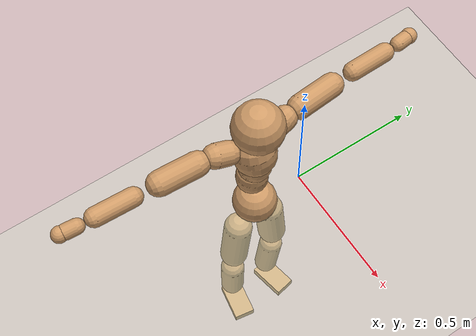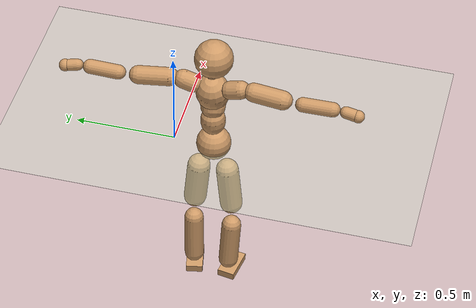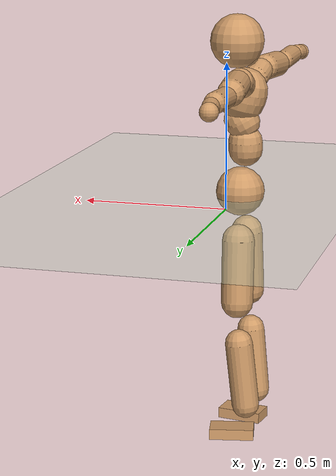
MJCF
<mujoco model="humanoid">
  <compiler coordinate="local"/>
  <default>
    <joint damping="0.0" armature="0.01" stiffness="0.0" limited="true"/>
    <geom conaffinity="1" condim="3" contype="7" margin="0.001" rgba="0.8 0.6 .4 1"/>
  </default>
  <asset>
    <texture type="skybox" builtin="gradient" rgb1=".4 .5 .6" rgb2="0 0 0" width="100" height="100"/>
    <texture builtin="flat" height="1278" mark="cross" markrgb="1 1 1" name="texgeom" random="0.01" rgb1="0.8 0.6 0.4" rgb2="0.8 0.6 0.4" type="cube" width="127"/>
    <texture builtin="checker" height="100" name="texplane" rgb1="0 0 0" rgb2="0.8 0.8 0.8" type="2d" width="100"/>
    <material name="MatPlane" reflectance="0.5" shininess="1" specular="1" texrepeat="60 60" texture="texplane"/>
    <material name="geom" texture="texgeom" texuniform="true"/>
  </asset>
  <worldbody>
    <light cutoff="100" diffuse="1 1 1" dir="-0 0 -1.3" directional="true" exponent="1" pos="0 0 1.3" specular=".1 .1 .1"/>
    <geom conaffinity="1" condim="3" name="floor" pos="0 0 0" rgba="0.8 0.9 0.8 1" size="100 100 .2" type="plane" material="MatPlane"/>
    <body name="Pelvis" pos="-0.0023 -0.2001 0.0206">
      <freejoint name="Pelvis"/>
      <geom type="sphere" contype="1" conaffinity="1" density="500" size="0.0859" pos="0.0000 0.0000 0.0000" name="Pelvis"/>
      <body name="L_Hip" pos="-0.0108 0.0656 -0.0873">
        <joint name="L_Hip_x" type="hinge" pos="0 0 0" axis="1 0 0" stiffness="800" damping="80" armature="0.02" range="-180.0000 180.0000"/>
        <joint name="L_Hip_y" type="hinge" pos="0 0 0" axis="0 1 0" stiffness="800" damping="80" armature="0.02" range="-180.0000 180.0000"/>
        <joint name="L_Hip_z" type="hinge" pos="0 0 0" axis="0 0 1" stiffness="800" damping="80" armature="0.02" range="-180.0000 180.0000"/>
        <geom type="capsule" contype="1" conaffinity="1" density="500" fromto="-0.0006 0.0066 -0.0735 -0.0025 0.0265 -0.2941" size="0.0567" name="L_Hip"/>
        <body name="L_Knee" pos="-0.0032 0.0332 -0.3676">
          <joint name="L_Knee_x" type="hinge" pos="0 0 0" axis="1 0 0" stiffness="800" damping="80" armature="0.02" range="-180.0000 180.0000"/>
          <joint name="L_Knee_y" type="hinge" pos="0 0 0" axis="0 1 0" stiffness="800" damping="80" armature="0.02" range="-180.0000 180.0000"/>
          <joint name="L_Knee_z" type="hinge" pos="0 0 0" axis="0 0 1" stiffness="800" damping="80" armature="0.02" range="-180.0000 180.0000"/>
          <geom type="capsule" contype="1" conaffinity="1" density="500" fromto="-0.0081 -0.0023 -0.0769 -0.0324 -0.0090 -0.3077" size="0.0489" name="L_Knee"/>
          <body name="L_Ankle" pos="-0.0405 -0.0113 -0.3847">
            <joint name="L_Ankle_x" type="hinge" pos="0 0 0" axis="1 0 0" stiffness="800" damping="80" armature="0.02" range="-180.0000 180.0000"/>
            <joint name="L_Ankle_y" type="hinge" pos="0 0 0" axis="0 1 0" stiffness="800" damping="80" armature="0.02" range="-180.0000 180.0000"/>
            <joint name="L_Ankle_z" type="hinge" pos="0 0 0" axis="0 0 1" stiffness="800" damping="80" armature="0.02" range="-180.0000 180.0000"/>
            <geom type="box" contype="1" conaffinity="1" density="500" pos="0.0555 0.0108 -0.0269" size="0.0786 0.0425 0.0194" quat="0.9954 0.0000 0.0000 0.0961" name="L_Ankle"/>
            <body name="L_Toe" pos="0.1109 0.0216 -0.0537">
              <joint name="L_Toe_x" type="hinge" pos="0 0 0" axis="1 0 0" stiffness="500" damping="50" armature="0.02" range="-180.0000 180.0000"/>
              <joint name="L_Toe_y" type="hinge" pos="0 0 0" axis="0 1 0" stiffness="500" damping="50" armature="0.02" range="-180.0000 180.0000"/>
              <joint name="L_Toe_z" type="hinge" pos="0 0 0" axis="0 0 1" stiffness="500" damping="50" armature="0.02" range="-180.0000 180.0000"/>
              <geom type="box" contype="1" conaffinity="1" density="500" pos="0.0000 0.0000 0.0264" size="0.0009 0.0022 0.0009" quat="0.9947 0.0000 0.0000 0.1029" name="L_Toe"/>
            </body>
          </body>
        </body>
      </body>
      <body name="R_Hip" pos="-0.0071 -0.0638 -0.0867">
        <joint name="R_Hip_x" type="hinge" pos="0 0 0" axis="1 0 0" stiffness="800" damping="80" armature="0.02" range="-180.0000 180.0000"/>
        <joint name="R_Hip_y" type="hinge" pos="0 0 0" axis="0 1 0" stiffness="800" damping="80" armature="0.02" range="-180.0000 180.0000"/>
        <joint name="R_Hip_z" type="hinge" pos="0 0 0" axis="0 0 1" stiffness="800" damping="80" armature="0.02" range="-180.0000 180.0000"/>
        <geom type="capsule" contype="1" conaffinity="1" density="500" fromto="-0.0012 -0.0077 -0.0749 -0.0047 -0.0307 -0.2998" size="0.0559" name="R_Hip"/>
        <body name="R_Knee" pos="-0.0058 -0.0383 -0.3747">
          <joint name="R_Knee_x" type="hinge" pos="0 0 0" axis="1 0 0" stiffness="800" damping="80" armature="0.02" range="-180.0000 180.0000"/>
          <joint name="R_Knee_y" type="hinge" pos="0 0 0" axis="0 1 0" stiffness="800" damping="80" armature="0.02" range="-180.0000 180.0000"/>
          <joint name="R_Knee_z" type="hinge" pos="0 0 0" axis="0 0 1" stiffness="800" damping="80" armature="0.02" range="-180.0000 180.0000"/>
          <geom type="capsule" contype="1" conaffinity="1" density="500" fromto="-0.0076 0.0029 -0.0768 -0.0303 0.0114 -0.3073" size="0.0492" name="R_Knee"/>
          <body name="R_Ankle" pos="-0.0379 0.0143 -0.3841">
            <joint name="R_Ankle_x" type="hinge" pos="0 0 0" axis="1 0 0" stiffness="800" damping="80" armature="0.02" range="-180.0000 180.0000"/>
            <joint name="R_Ankle_y" type="hinge" pos="0 0 0" axis="0 1 0" stiffness="800" damping="80" armature="0.02" range="-180.0000 180.0000"/>
            <joint name="R_Ankle_z" type="hinge" pos="0 0 0" axis="0 0 1" stiffness="800" damping="80" armature="0.02" range="-180.0000 180.0000"/>
            <geom type="box" contype="1" conaffinity="1" density="500" pos="0.0569 -0.0093 -0.0230" size="0.0801 0.0436 0.0188" quat="0.9967 0.0000 0.0000 -0.0812" name="R_Ankle"/>
            <body name="R_Toe" pos="0.1138 -0.0187 -0.0459">
              <joint name="R_Toe_x" type="hinge" pos="0 0 0" axis="1 0 0" stiffness="500" damping="50" armature="0.02" range="-180.0000 180.0000"/>
              <joint name="R_Toe_y" type="hinge" pos="0 0 0" axis="0 1 0" stiffness="500" damping="50" armature="0.02" range="-180.0000 180.0000"/>
              <joint name="R_Toe_z" type="hinge" pos="0 0 0" axis="0 0 1" stiffness="500" damping="50" armature="0.02" range="-180.0000 180.0000"/>
              <geom type="box" contype="1" conaffinity="1" density="500" pos="0.0000 0.0000 0.0249" size="0.0008 0.0022 0.001" quat="0.9974 0.0000 0.0000 -0.0714" name="R_Toe"/>
            </body>
          </body>
        </body>
      </body>
      <body name="Torso" pos="-0.0174 -0.0026 0.1">
        <joint name="Torso_x" type="hinge" pos="0 0 0" axis="1 0 0" stiffness="1000" damping="100" armature="0.02" range="-180.0000 180.0000"/>
        <joint name="Torso_y" type="hinge" pos="0 0 0" axis="0 1 0" stiffness="1000" damping="100" armature="0.02" range="-180.0000 180.0000"/>
        <joint name="Torso_z" type="hinge" pos="0 0 0" axis="0 0 1" stiffness="1000" damping="100" armature="0.02" range="-180.0000 180.0000"/>
        <geom type="capsule" contype="1" conaffinity="1" density="500" fromto="0.0003 0.0024 0.0769 0.0002 0.0016 0.0512" size="0.060264" name="Torso"/>
        <body name="Spine" pos="0.0006 0.0041 0.1281">
          <joint name="Spine_x" type="hinge" pos="0 0 0" axis="1 0 0" stiffness="1000" damping="100" armature="0.02" range="-180.0000 180.0000"/>
          <joint name="Spine_y" type="hinge" pos="0 0 0" axis="0 1 0" stiffness="1000" damping="100" armature="0.02" range="-180.0000 180.0000"/>
          <joint name="Spine_z" type="hinge" pos="0 0 0" axis="0 0 1" stiffness="1000" damping="100" armature="0.02" range="-180.0000 180.0000"/>
          <geom type="capsule" contype="1" conaffinity="1" density="500" fromto="0.0150 0.0016 0.0283 0.0100 0.0010 0.0189" size="0.060915" name="Spine"/>
          <body name="Chest" pos="0.0251 0.0026 0.0472">
            <joint name="Chest_x" type="hinge" pos="0 0 0" axis="1 0 0" stiffness="1000" damping="100" armature="0.02" range="-180.0000 180.0000"/>
            <joint name="Chest_y" type="hinge" pos="0 0 0" axis="0 1 0" stiffness="1000" damping="100" armature="0.02" range="-180.0000 180.0000"/>
            <joint name="Chest_z" type="hinge" pos="0 0 0" axis="0 0 1" stiffness="1000" damping="100" armature="0.02" range="-180.0000 180.0000"/>
            <geom type="capsule" contype="1" conaffinity="1" density="500" fromto="-0.0219 -0.0009 0.0821 -0.0146 -0.0006 0.0547" size="0.081282" name="Chest"/>
            <body name="Neck" pos="-0.0424 -0.0031 0.1927">
              <joint name="Neck_x" type="hinge" pos="0 0 0" axis="1 0 0" stiffness="500" damping="50" armature="0.02" range="-180.0000 180.0000"/>
              <joint name="Neck_y" type="hinge" pos="0 0 0" axis="0 1 0" stiffness="500" damping="50" armature="0.02" range="-180.0000 180.0000"/>
              <joint name="Neck_z" type="hinge" pos="0 0 0" axis="0 0 1" stiffness="500" damping="50" armature="0.02" range="-180.0000 180.0000"/>
              <geom type="capsule" contype="1" conaffinity="1" density="500" fromto="0.0096 0.0007 0.0122 0.0382 0.0028 0.0489" size="0.03627" name="Neck"/>
              <body name="Head" pos="0.0478 0.0036 0.0611">
                <joint name="Head_x" type="hinge" pos="0 0 0" axis="1 0 0" stiffness="500" damping="50" armature="0.02" range="-180.0000 180.0000"/>
                <joint name="Head_y" type="hinge" pos="0 0 0" axis="0 1 0" stiffness="500" damping="50" armature="0.02" range="-180.0000 180.0000"/>
                <joint name="Head_z" type="hinge" pos="0 0 0" axis="0 0 1" stiffness="500" damping="50" armature="0.02" range="-180.0000 180.0000"/>
                <geom type="sphere" contype="1" conaffinity="1" density="500" size="0.0939" pos="0.0000 0.0000 0.0000" name="Head"/>
              </body>
            </body>
            <body name="L_Thorax" pos="-0.0315 0.0729 0.1099">
              <joint name="L_Thorax_x" type="hinge" pos="0 0 0" axis="1 0 0" stiffness="500" damping="50" armature="0.02" range="-180.0000 180.0000"/>
              <joint name="L_Thorax_y" type="hinge" pos="0 0 0" axis="0 1 0" stiffness="500" damping="50" armature="0.02" range="-180.0000 180.0000"/>
              <joint name="L_Thorax_z" type="hinge" pos="0 0 0" axis="0 0 1" stiffness="500" damping="50" armature="0.02" range="-180.0000 180.0000"/>
              <geom type="capsule" contype="1" conaffinity="1" density="500" fromto="-0.0014 0.0163 0.0062 -0.0056 0.0653 0.0249" size="0.0461" name="L_Thorax"/>
              <body name="L_Shoulder" pos="-0.007 0.0816 0.0311">
                <joint name="L_Shoulder_x" type="hinge" pos="0 0 0" axis="1 0 0" stiffness="500" damping="50" armature="0.02" range="-720.0000 720.0000"/>
                <joint name="L_Shoulder_y" type="hinge" pos="0 0 0" axis="0 1 0" stiffness="500" damping="50" armature="0.02" range="-720.0000 720.0000"/>
                <joint name="L_Shoulder_z" type="hinge" pos="0 0 0" axis="0 0 1" stiffness="500" damping="50" armature="0.02" range="-720.0000 720.0000"/>
                <geom type="capsule" contype="1" conaffinity="1" density="500" fromto="-0.0053 0.0496 -0.0025 -0.0213 0.1983 -0.0098" size="0.045" name="L_Shoulder"/>
                <body name="L_Elbow" pos="-0.0266 0.2479 -0.0123">
                  <joint name="L_Elbow_x" type="hinge" pos="0 0 0" axis="1 0 0" stiffness="500" damping="50" armature="0.02" range="-720.0000 720.0000"/>
                  <joint name="L_Elbow_y" type="hinge" pos="0 0 0" axis="0 1 0" stiffness="500" damping="50" armature="0.02" range="-720.0000 720.0000"/>
                  <joint name="L_Elbow_z" type="hinge" pos="0 0 0" axis="0 0 1" stiffness="500" damping="50" armature="0.02" range="-720.0000 720.0000"/>
                  <geom type="capsule" contype="1" conaffinity="1" density="500" fromto="-0.0003 0.0466 0.0018 -0.0013 0.1865 0.0071" size="0.0354" name="L_Elbow"/>
                  <body name="L_Wrist" pos="-0.0016 0.2331 0.0089">
                    <joint name="L_Wrist_x" type="hinge" pos="0 0 0" axis="1 0 0" stiffness="300" damping="30" armature="0.02" range="-180.0000 180.0000"/>
                    <joint name="L_Wrist_y" type="hinge" pos="0 0 0" axis="0 1 0" stiffness="300" damping="30" armature="0.02" range="-180.0000 180.0000"/>
                    <joint name="L_Wrist_z" type="hinge" pos="0 0 0" axis="0 0 1" stiffness="300" damping="30" armature="0.02" range="-180.0000 180.0000"/>
                    <geom type="capsule" contype="1" conaffinity="1" density="500" fromto="-0.0025 0.0150 -0.0018 -0.0101 0.0600 -0.0074" size="0.0281" name="L_Wrist"/>
                    <body name="L_Hand" pos="-0.0126 0.075 -0.0092">
                      <joint name="L_Hand_x" type="hinge" pos="0 0 0" axis="1 0 0" stiffness="300" damping="30" armature="0.02" range="-180.0000 180.0000"/>
                      <joint name="L_Hand_y" type="hinge" pos="0 0 0" axis="0 1 0" stiffness="300" damping="30" armature="0.02" range="-180.0000 180.0000"/>
                      <joint name="L_Hand_z" type="hinge" pos="0 0 0" axis="0 0 1" stiffness="300" damping="30" armature="0.02" range="-180.0000 180.0000"/>
                      <geom type="sphere" contype="1" conaffinity="1" density="500" size="0.0303" pos="0.0000 0.0000 0.0000" name="L_Hand"/>
                    </body>
                  </body>
                </body>
              </body>
            </body>
            <body name="R_Thorax" pos="-0.0355 -0.0746 0.1077">
              <joint name="R_Thorax_x" type="hinge" pos="0 0 0" axis="1 0 0" stiffness="500" damping="50" armature="0.02" range="-180.0000 180.0000"/>
              <joint name="R_Thorax_y" type="hinge" pos="0 0 0" axis="0 1 0" stiffness="500" damping="50" armature="0.02" range="-180.0000 180.0000"/>
              <joint name="R_Thorax_z" type="hinge" pos="0 0 0" axis="0 0 1" stiffness="500" damping="50" armature="0.02" range="-180.0000 180.0000"/>
              <geom type="capsule" contype="1" conaffinity="1" density="500" fromto="-0.0020 -0.0170 0.0063 -0.0078 -0.0680 0.0253" size="0.045" name="R_Thorax"/>
              <body name="R_Shoulder" pos="-0.0098 -0.085 0.0316">
                <joint name="R_Shoulder_x" type="hinge" pos="0 0 0" axis="1 0 0" stiffness="500" damping="50" armature="0.02" range="-720.0000 720.0000"/>
                <joint name="R_Shoulder_y" type="hinge" pos="0 0 0" axis="0 1 0" stiffness="500" damping="50" armature="0.02" range="-720.0000 720.0000"/>
                <joint name="R_Shoulder_z" type="hinge" pos="0 0 0" axis="0 0 1" stiffness="500" damping="50" armature="0.02" range="-720.0000 720.0000"/>
                <geom type="capsule" contype="1" conaffinity="1" density="500" fromto="-0.0036 -0.0477 -0.0024 -0.0143 -0.1910 -0.0094" size="0.0463" name="R_Shoulder"/>
                <body name="R_Elbow" pos="-0.0179 -0.2387 -0.0118">
                  <joint name="R_Elbow_x" type="hinge" pos="0 0 0" axis="1 0 0" stiffness="500" damping="50" armature="0.02" range="-720.0000 720.0000"/>
                  <joint name="R_Elbow_y" type="hinge" pos="0 0 0" axis="0 1 0" stiffness="500" damping="50" armature="0.02" range="-720.0000 720.0000"/>
                  <joint name="R_Elbow_z" type="hinge" pos="0 0 0" axis="0 0 1" stiffness="500" damping="50" armature="0.02" range="-720.0000 720.0000"/>
                  <geom type="capsule" contype="1" conaffinity="1" density="500" fromto="-0.0011 -0.0479 0.0016 -0.0043 -0.1915 0.0063" size="0.0355" name="R_Elbow"/>
                  <body name="R_Wrist" pos="-0.0054 -0.2394 0.0078">
                    <joint name="R_Wrist_x" type="hinge" pos="0 0 0" axis="1 0 0" stiffness="300" damping="30" armature="0.02" range="-180.0000 180.0000"/>
                    <joint name="R_Wrist_y" type="hinge" pos="0 0 0" axis="0 1 0" stiffness="300" damping="30" armature="0.02" range="-180.0000 180.0000"/>
                    <joint name="R_Wrist_z" type="hinge" pos="0 0 0" axis="0 0 1" stiffness="300" damping="30" armature="0.02" range="-180.0000 180.0000"/>
                    <geom type="capsule" contype="1" conaffinity="1" density="500" fromto="-0.0019 -0.0150 -0.0013 -0.0077 -0.0599 -0.0054" size="0.0286" name="R_Wrist"/>
                    <body name="R_Hand" pos="-0.0096 -0.0749 -0.0067">
                      <joint name="R_Hand_x" type="hinge" pos="0 0 0" axis="1 0 0" stiffness="300" damping="30" armature="0.02" range="-180.0000 180.0000"/>
                      <joint name="R_Hand_y" type="hinge" pos="0 0 0" axis="0 1 0" stiffness="300" damping="30" armature="0.02" range="-180.0000 180.0000"/>
                      <joint name="R_Hand_z" type="hinge" pos="0 0 0" axis="0 0 1" stiffness="300" damping="30" armature="0.02" range="-180.0000 180.0000"/>
                      <geom type="sphere" contype="1" conaffinity="1" density="500" size="0.0301" pos="0.0000 0.0000 0.0000" name="R_Hand"/>
                    </body>
                  </body>
                </body>
              </body>
            </body>
          </body>
        </body>
      </body>
    </body>
  </worldbody>
  <actuator>
    <motor name="L_Hip_x" joint="L_Hip_x" gear="500"/>
    <motor name="L_Hip_y" joint="L_Hip_y" gear="500"/>
    <motor name="L_Hip_z" joint="L_Hip_z" gear="500"/>
    <motor name="L_Knee_x" joint="L_Knee_x" gear="500"/>
    <motor name="L_Knee_y" joint="L_Knee_y" gear="500"/>
    <motor name="L_Knee_z" joint="L_Knee_z" gear="500"/>
    <motor name="L_Ankle_x" joint="L_Ankle_x" gear="500"/>
    <motor name="L_Ankle_y" joint="L_Ankle_y" gear="500"/>
    <motor name="L_Ankle_z" joint="L_Ankle_z" gear="500"/>
    <motor name="L_Toe_x" joint="L_Toe_x" gear="500"/>
    <motor name="L_Toe_y" joint="L_Toe_y" gear="500"/>
    <motor name="L_Toe_z" joint="L_Toe_z" gear="500"/>
    <motor name="R_Hip_x" joint="R_Hip_x" gear="500"/>
    <motor name="R_Hip_y" joint="R_Hip_y" gear="500"/>
    <motor name="R_Hip_z" joint="R_Hip_z" gear="500"/>
    <motor name="R_Knee_x" joint="R_Knee_x" gear="500"/>
    <motor name="R_Knee_y" joint="R_Knee_y" gear="500"/>
    <motor name="R_Knee_z" joint="R_Knee_z" gear="500"/>
    <motor name="R_Ankle_x" joint="R_Ankle_x" gear="500"/>
    <motor name="R_Ankle_y" joint="R_Ankle_y" gear="500"/>
    <motor name="R_Ankle_z" joint="R_Ankle_z" gear="500"/>
    <motor name="R_Toe_x" joint="R_Toe_x" gear="500"/>
    <motor name="R_Toe_y" joint="R_Toe_y" gear="500"/>
    <motor name="R_Toe_z" joint="R_Toe_z" gear="500"/>
    <motor name="Torso_x" joint="Torso_x" gear="500"/>
    <motor name="Torso_y" joint="Torso_y" gear="500"/>
    <motor name="Torso_z" joint="Torso_z" gear="500"/>
    <motor name="Spine_x" joint="Spine_x" gear="500"/>
    <motor name="Spine_y" joint="Spine_y" gear="500"/>
    <motor name="Spine_z" joint="Spine_z" gear="500"/>
    <motor name="Chest_x" joint="Chest_x" gear="500"/>
    <motor name="Chest_y" joint="Chest_y" gear="500"/>
    <motor name="Chest_z" joint="Chest_z" gear="500"/>
    <motor name="Neck_x" joint="Neck_x" gear="500"/>
    <motor name="Neck_y" joint="Neck_y" gear="500"/>
    <motor name="Neck_z" joint="Neck_z" gear="500"/>
    <motor name="Head_x" joint="Head_x" gear="500"/>
    <motor name="Head_y" joint="Head_y" gear="500"/>
    <motor name="Head_z" joint="Head_z" gear="500"/>
    <motor name="L_Thorax_x" joint="L_Thorax_x" gear="500"/>
    <motor name="L_Thorax_y" joint="L_Thorax_y" gear="500"/>
    <motor name="L_Thorax_z" joint="L_Thorax_z" gear="500"/>
    <motor name="L_Shoulder_x" joint="L_Shoulder_x" gear="500"/>
    <motor name="L_Shoulder_y" joint="L_Shoulder_y" gear="500"/>
    <motor name="L_Shoulder_z" joint="L_Shoulder_z" gear="500"/>
    <motor name="L_Elbow_x" joint="L_Elbow_x" gear="500"/>
    <motor name="L_Elbow_y" joint="L_Elbow_y" gear="500"/>
    <motor name="L_Elbow_z" joint="L_Elbow_z" gear="500"/>
    <motor name="L_Wrist_x" joint="L_Wrist_x" gear="500"/>
    <motor name="L_Wrist_y" joint="L_Wrist_y" gear="500"/>
    <motor name="L_Wrist_z" joint="L_Wrist_z" gear="500"/>
    <motor name="L_Hand_x" joint="L_Hand_x" gear="500"/>
    <motor name="L_Hand_y" joint="L_Hand_y" gear="500"/>
    <motor name="L_Hand_z" joint="L_Hand_z" gear="500"/>
    <motor name="R_Thorax_x" joint="R_Thorax_x" gear="500"/>
    <motor name="R_Thorax_y" joint="R_Thorax_y" gear="500"/>
    <motor name="R_Thorax_z" joint="R_Thorax_z" gear="500"/>
    <motor name="R_Shoulder_x" joint="R_Shoulder_x" gear="500"/>
    <motor name="R_Shoulder_y" joint="R_Shoulder_y" gear="500"/>
    <motor name="R_Shoulder_z" joint="R_Shoulder_z" gear="500"/>
    <motor name="R_Elbow_x" joint="R_Elbow_x" gear="500"/>
    <motor name="R_Elbow_y" joint="R_Elbow_y" gear="500"/>
    <motor name="R_Elbow_z" joint="R_Elbow_z" gear="500"/>
    <motor name="R_Wrist_x" joint="R_Wrist_x" gear="500"/>
    <motor name="R_Wrist_y" joint="R_Wrist_y" gear="500"/>
    <motor name="R_Wrist_z" joint="R_Wrist_z" gear="500"/>
    <motor name="R_Hand_x" joint="R_Hand_x" gear="500"/>
    <motor name="R_Hand_y" joint="R_Hand_y" gear="500"/>
    <motor name="R_Hand_z" joint="R_Hand_z" gear="500"/>
  </actuator>
  <contact>
    <exclude body1="Torso" body2="Chest"/>
    <exclude body1="Head" body2="Chest"/>
    <exclude body1="R_Knee" body2="R_Toe"/>
    <exclude body1="R_Knee" body2="L_Ankle"/>
    <exclude body1="R_Knee" body2="L_Toe"/>
    <exclude body1="L_Knee" body2="L_Toe"/>
    <exclude body1="L_Knee" body2="R_Ankle"/>
    <exclude body1="L_Knee" body2="R_Toe"/>
    <exclude body1="L_Shoulder" body2="Chest"/>
    <exclude body1="R_Shoulder" body2="Chest"/>
  </contact>
  <sensor/>
  <size njmax="700" nconmax="700"/>
</mujoco>
